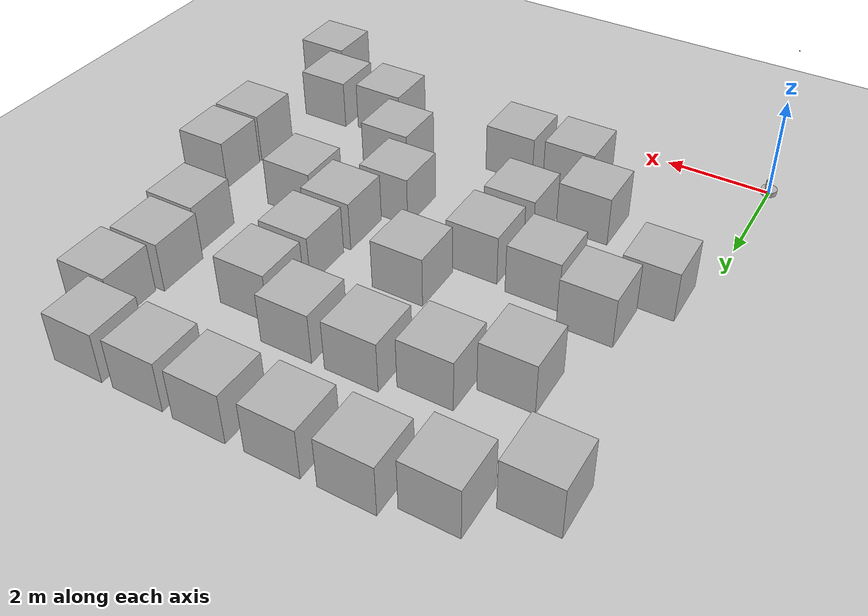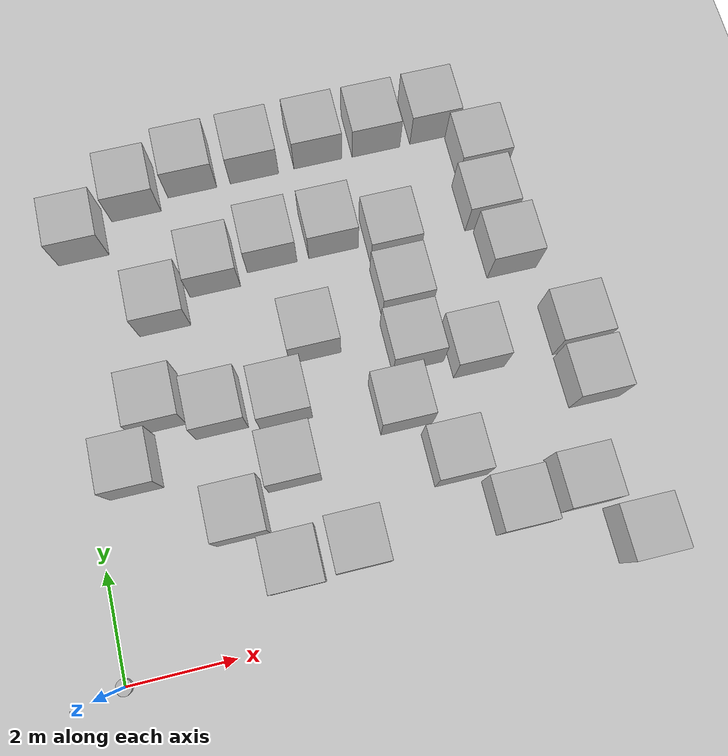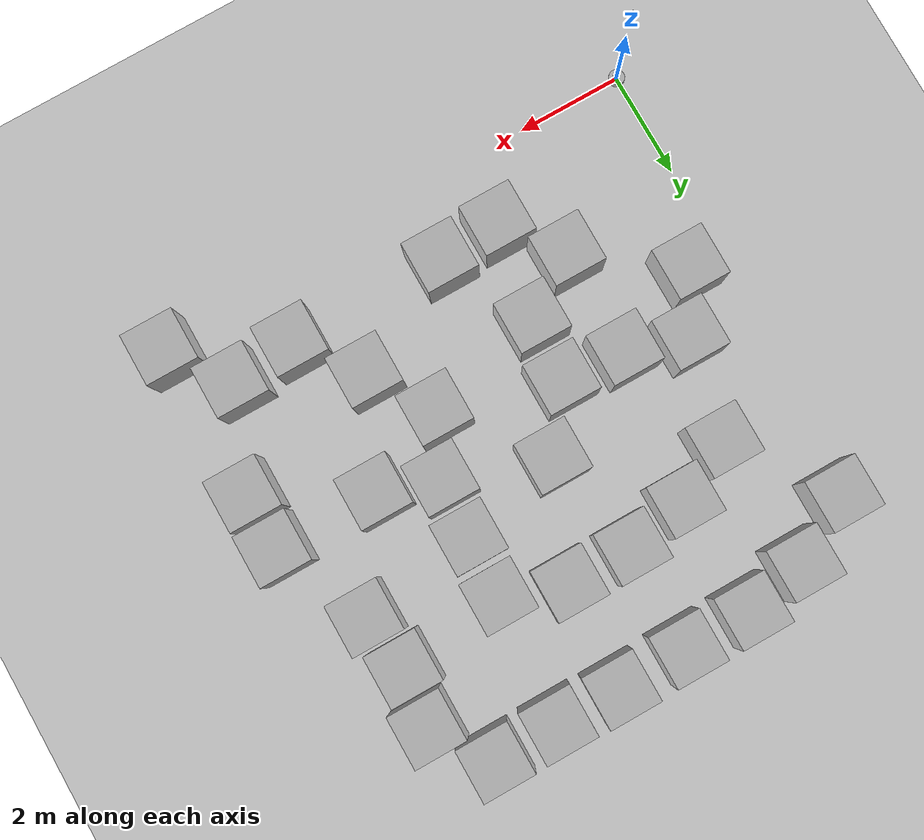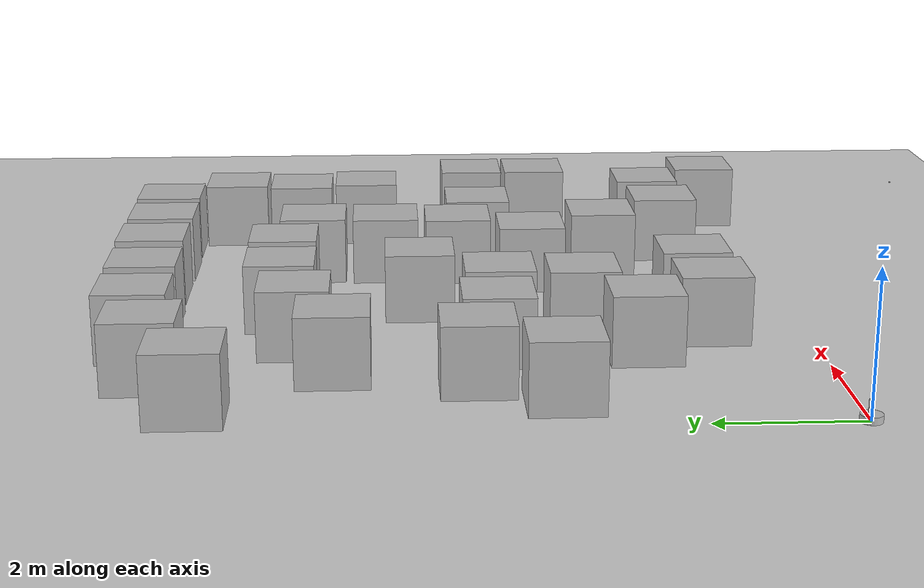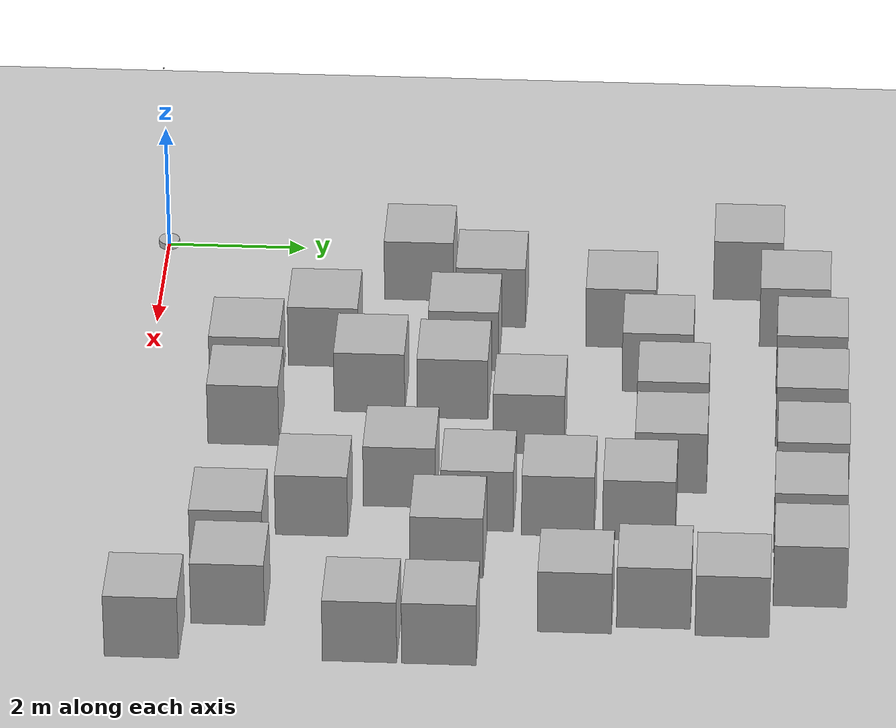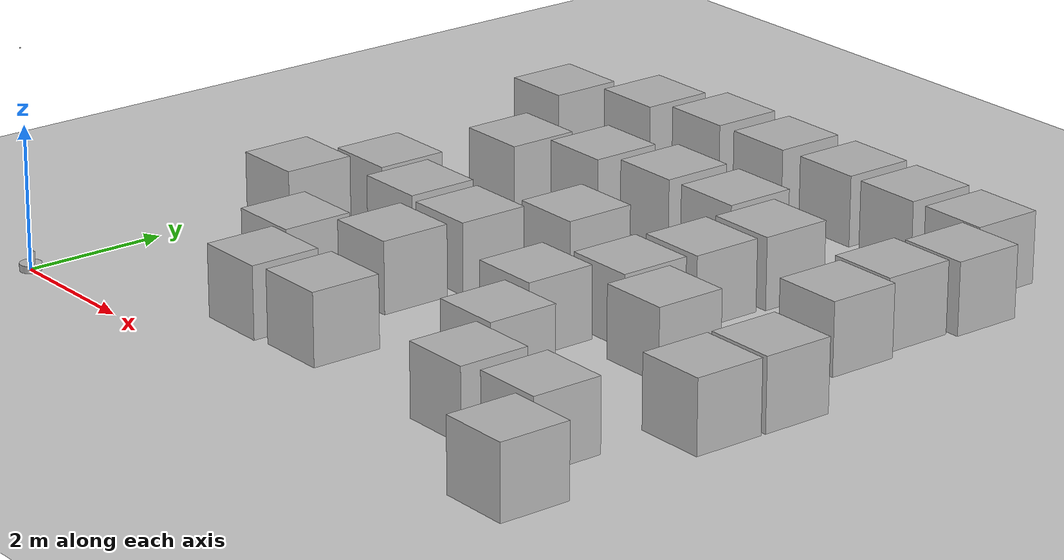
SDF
<sdf version="1.7">
 <world name="default">
  <light name="sun" type="directional">
   <pose>0 0 10 0 -0 0</pose>
   <diffuse>0.8 0.8 0.8 1</diffuse>
   <specular>0.2 0.2 0.2 1</specular>
   <attenuation>
    <range>1000</range>
    <constant>0.9</constant>
    <linear>0.01</linear>
    <quadratic>0.001</quadratic>
   </attenuation>
   <direction>-0.5 0.1 -0.9</direction>
   <spot><inner_angle>0</inner_angle><outer_angle>0</outer_angle><falloff>0</falloff></spot>
  </light>
  <model name="ground_plane">
   <static>1</static>
   <link name="link">
    <collision name="collision">
     <geometry><plane><normal>0 0 1</normal><size>100 100</size></plane></geometry>
     <surface><friction><ode><mu>100</mu><mu2>50</mu2></ode></friction></surface>
    </collision>
    <visual name="visual">
     <cast_shadows>0</cast_shadows>
     <geometry><plane><normal>0 0 1</normal><size>100 100</size></plane></geometry>
     <material>
      <script><uri>file://media/materials/scripts/gazebo.material</uri><name>Gazebo/Grey</name></script>
     </material>
    </visual>
   </link>
  </model>
  <gravity>0 0 -9.8</gravity>
  <magnetic_field>6e-06 2.3e-05 -4.2e-05</magnetic_field>
  <atmosphere type="adiabatic"/>
  <physics type="ode">
   <max_step_size>0.001</max_step_size>
   <real_time_factor>1</real_time_factor>
   <real_time_update_rate>1000</real_time_update_rate>
  </physics>
  <scene><ambient>0.4 0.4 0.4 1</ambient><background>0.7 0.7 0.7 1</background><shadows>1</shadows></scene>
  <audio><device>default</device></audio>
  <spherical_coordinates>
   <surface_model>EARTH_WGS84</surface_model>
   <latitude_deg>0</latitude_deg>
   <longitude_deg>0</longitude_deg>
   <elevation>0</elevation>
   <heading_deg>0</heading_deg>
  </spherical_coordinates>
  <model name="cube_obstacle_0">
   <link name="link">
    <pose>0 0 0.5 0 -0 0</pose>
    <collision name="collision">
     <geometry><mesh><uri>model://cube_obstacle/meshes/cube.stl</uri></mesh></geometry>
    </collision>
    <visual name="visual">
     <geometry><mesh><uri>model://cube_obstacle/meshes/cube.stl</uri></mesh></geometry>
    </visual>
    <inertial>
     <inertia><ixx>1</ixx><ixy>0</ixy><ixz>0</ixz><iyy>1</iyy><iyz>0</iyz><izz>1</izz></inertia>
     <mass>1</mass>
    </inertial>
   </link>
   <pose>2.51679 4.47749 -0.5 -0 -0 -0</pose>
  </model>
  <model name="my_bot">
   <joint name="x_joint" type="prismatic">
    <pose relative_to="__model__">0 0 0.05 0 -0 0</pose>
    <parent>world</parent>
    <child>x_link</child>
    <axis>
     <xyz>1 0 0</xyz>
     <limit><lower>-100</lower><upper>100</upper><effort>1</effort><velocity>0.5</velocity></limit>
     <dynamics><spring_reference>0</spring_reference><spring_stiffness>0</spring_stiffness></dynamics>
    </axis>
   </joint>
   <link name="x_link">
    <pose relative_to="x_joint">0 0 0 0 -0 0</pose>
    <inertial>
     <mass>0.001</mass>
     <inertia><ixx>0.0001</ixx><ixy>0</ixy><ixz>0</ixz><iyy>0.0001</iyy><iyz>0</iyz><izz>0.0001</izz></inertia>
    </inertial>
    <collision name="x_link_collision">
     <pose>0 0 3 0 -0 0</pose>
     <geometry><cylinder><length>0.01</length><radius>0.01</radius></cylinder></geometry>
    </collision>
    <visual name="x_link_visual">
     <pose>0 0 3 0 -0 0</pose>
     <geometry><cylinder><length>0.01</length><radius>0.01</radius></cylinder></geometry>
    </visual>
   </link>
   <joint name="y_joint" type="prismatic">
    <pose relative_to="x_link">0 0 0 0 -0 0</pose>
    <parent>x_link</parent>
    <child>y_link</child>
    <axis>
     <xyz>0 1 0</xyz>
     <limit><lower>-100</lower><upper>100</upper><effort>1</effort><velocity>0.5</velocity></limit>
     <dynamics><spring_reference>0</spring_reference><spring_stiffness>0</spring_stiffness></dynamics>
    </axis>
   </joint>
   <link name="y_link">
    <pose relative_to="y_joint">0 0 0 0 -0 0</pose>
    <inertial>
     <mass>0.001</mass>
     <inertia><ixx>0.0001</ixx><ixy>0</ixy><ixz>0</ixz><iyy>0.0001</iyy><iyz>0</iyz><izz>0.0001</izz></inertia>
    </inertial>
    <collision name="y_link_collision">
     <pose>0 0 3 0 -0 0</pose>
     <geometry><cylinder><length>0.01</length><radius>0.01</radius></cylinder></geometry>
    </collision>
    <visual name="y_link_visual">
     <pose>0 0 3 0 -0 0</pose>
     <geometry><cylinder><length>0.01</length><radius>0.01</radius></cylinder></geometry>
    </visual>
   </link>
   <joint name="theta_joint" type="revolute">
    <pose relative_to="y_link">0 0 0 0 -0 0</pose>
    <parent>y_link</parent>
    <child>base_link</child>
    <axis>
     <xyz>0 0 1</xyz>
     <limit><lower>-1e+16</lower><upper>1e+16</upper></limit>
     <dynamics><spring_reference>0</spring_reference><spring_stiffness>0</spring_stiffness></dynamics>
    </axis>
   </joint>
   <link name="base_link">
    <pose relative_to="theta_joint">0 0 0 0 -0 0</pose>
    <inertial>
     <mass>1</mass>
     <inertia>
      <ixx>0.00166667</ixx>
      <ixy>0</ixy>
      <ixz>0</ixz>
      <iyy>0.00166667</iyy>
      <iyz>0</iyz>
      <izz>0.00166667</izz>
     </inertia>
    </inertial>
    <collision name="base_link_collision">
     <geometry><cylinder><length>0.1</length><radius>0.15</radius></cylinder></geometry>
    </collision>
    <visual name="base_link_visual">
     <geometry><cylinder><length>0.1</length><radius>0.15</radius></cylinder></geometry>
    </visual>
   </link>
   <joint name="arm_joint" type="revolute">
    <pose relative_to="base_link">0.05 0 0.025 0 -0 0</pose>
    <parent>base_link</parent>
    <child>arm</child>
    <axis>
     <xyz>0 1 0</xyz>
     <limit><lower>-1.5708</lower><upper>1.5708</upper><effort>1</effort><velocity>1</velocity></limit>
     <dynamics><spring_reference>0</spring_reference><spring_stiffness>0</spring_stiffness></dynamics>
    </axis>
   </joint>
   <link name="arm">
    <pose relative_to="arm_joint">0 0 0 0 -0 0</pose>
    <inertial>
     <mass>0.2</mass>
     <inertia><ixx>0.0001</ixx><ixy>0</ixy><ixz>0</ixz><iyy>0.0001</iyy><iyz>0</iyz><izz>0.0002</izz></inertia>
    </inertial>
    <collision name="arm_collision">
     <geometry>
      <mesh><scale>1 1 1</scale><uri>model://vacumoon_simulation/description/arm.stl</uri></mesh>
     </geometry>
    </collision>
    <visual name="arm_visual">
     <geometry>
      <mesh><scale>1 1 1</scale><uri>model://vacumoon_simulation/description/arm.stl</uri></mesh>
     </geometry>
    </visual>
   </link>
   <static>0</static>
   <plugin name="gazebo_ros2_control" filename="libgazebo_ros2_control.so">
    <parameters>/home/max/vacumoon_ws/install/vacumoon_simulation/share/vacumoon_simulation/config/controllers.yaml</parameters>
   </plugin>
   <pose>-4e-06 0 1e-06 7e-06 7e-06 -0</pose>
  </model>
  <model name="cube_obstacle_0_clone">
   <link name="link">
    <pose>0 0 0.5 0 -0 0</pose>
    <collision name="collision">
     <geometry><mesh><uri>model://cube_obstacle/meshes/cube.stl</uri></mesh></geometry>
    </collision>
    <visual name="visual">
     <geometry><mesh><uri>model://cube_obstacle/meshes/cube.stl</uri></mesh></geometry>
    </visual>
    <inertial>
     <inertia><ixx>1</ixx><ixy>0</ixy><ixz>0</ixz><iyy>1</iyy><iyz>0</iyz><izz>1</izz></inertia>
     <mass>1</mass>
    </inertial>
   </link>
   <pose>4.52945 5.49802 -0.5 -0 -0 -0</pose>
  </model>
  <model name="cube_obstacle_0_clone_0">
   <link name="link">
    <pose>0 0 0.5 0 -0 0</pose>
    <collision name="collision">
     <geometry><mesh><uri>model://cube_obstacle/meshes/cube.stl</uri></mesh></geometry>
    </collision>
    <visual name="visual">
     <geometry><mesh><uri>model://cube_obstacle/meshes/cube.stl</uri></mesh></geometry>
    </visual>
    <inertial>
     <inertia><ixx>1</ixx><ixy>0</ixy><ixz>0</ixz><iyy>1</iyy><iyz>0</iyz><izz>1</izz></inertia>
     <mass>1</mass>
    </inertial>
   </link>
   <pose>6.51221 7.1048 -0.5 -0 -0 -0</pose>
  </model>
  <model name="cube_obstacle_0_clone_1">
   <link name="link">
    <pose>0 0 0.5 0 -0 0</pose>
    <collision name="collision">
     <geometry><mesh><uri>model://cube_obstacle/meshes/cube.stl</uri></mesh></geometry>
    </collision>
    <visual name="visual">
     <geometry><mesh><uri>model://cube_obstacle/meshes/cube.stl</uri></mesh></geometry>
    </visual>
    <inertial>
     <inertia><ixx>1</ixx><ixy>0</ixy><ixz>0</ixz><iyy>1</iyy><iyz>0</iyz><izz>1</izz></inertia>
     <mass>1</mass>
    </inertial>
   </link>
   <pose>7.49526 4.50697 -0.5 -0 -0 -0</pose>
  </model>
  <model name="cube_obstacle_0_clone_2">
   <link name="link">
    <pose>0 0 0.5 0 -0 0</pose>
    <collision name="collision">
     <geometry><mesh><uri>model://cube_obstacle/meshes/cube.stl</uri></mesh></geometry>
    </collision>
    <visual name="visual">
     <geometry><mesh><uri>model://cube_obstacle/meshes/cube.stl</uri></mesh></geometry>
    </visual>
    <inertial>
     <inertia><ixx>1</ixx><ixy>0</ixy><ixz>0</ixz><iyy>1</iyy><iyz>0</iyz><izz>1</izz></inertia>
     <mass>1</mass>
    </inertial>
   </link>
   <pose>4.50356 1.48626 -0.5 -0 -0 -0</pose>
  </model>
  <model name="cube_obstacle_0_clone_3">
   <link name="link">
    <pose>0 0 0.5 0 -0 0</pose>
    <collision name="collision">
     <geometry><mesh><uri>model://cube_obstacle/meshes/cube.stl</uri></mesh></geometry>
    </collision>
    <visual name="visual">
     <geometry><mesh><uri>model://cube_obstacle/meshes/cube.stl</uri></mesh></geometry>
    </visual>
    <inertial>
     <inertia><ixx>1</ixx><ixy>0</ixy><ixz>0</ixz><iyy>1</iyy><iyz>0</iyz><izz>1</izz></inertia>
     <mass>1</mass>
    </inertial>
   </link>
   <pose>2.52027 2.47172 -0.5 -0 -0 -0</pose>
  </model>
  <model name="cube_obstacle_0_clone_4">
   <link name="link">
    <pose>0 0 0.5 0 -0 0</pose>
    <collision name="collision">
     <geometry><mesh><uri>model://cube_obstacle/meshes/cube.stl</uri></mesh></geometry>
    </collision>
    <visual name="visual">
     <geometry><mesh><uri>model://cube_obstacle/meshes/cube.stl</uri></mesh></geometry>
    </visual>
    <inertial>
     <inertia><ixx>1</ixx><ixy>0</ixy><ixz>0</ixz><iyy>1</iyy><iyz>0</iyz><izz>1</izz></inertia>
     <mass>1</mass>
    </inertial>
   </link>
   <pose>7.47965 1.49169 -0.5 -0 -0 -0</pose>
  </model>
  <model name="cube_obstacle_0_clone_5">
   <link name="link">
    <pose>0 0 0.5 0 -0 0</pose>
    <collision name="collision">
     <geometry><mesh><uri>model://cube_obstacle/meshes/cube.stl</uri></mesh></geometry>
    </collision>
    <visual name="visual">
     <geometry><mesh><uri>model://cube_obstacle/meshes/cube.stl</uri></mesh></geometry>
    </visual>
    <inertial>
     <inertia><ixx>1</ixx><ixy>0</ixy><ixz>0</ixz><iyy>1</iyy><iyz>0</iyz><izz>1</izz></inertia>
     <mass>1</mass>
    </inertial>
   </link>
   <pose>9.5001 0.50975 -0.5 -0 -0 -0</pose>
  </model>
  <model name="cube_obstacle_0_clone_6">
   <link name="link">
    <pose>0 0 0.5 0 -0 0</pose>
    <collision name="collision">
     <geometry><mesh><uri>model://cube_obstacle/meshes/cube.stl</uri></mesh></geometry>
    </collision>
    <visual name="visual">
     <geometry><mesh><uri>model://cube_obstacle/meshes/cube.stl</uri></mesh></geometry>
    </visual>
    <inertial>
     <inertia><ixx>1</ixx><ixy>0</ixy><ixz>0</ixz><iyy>1</iyy><iyz>0</iyz><izz>1</izz></inertia>
     <mass>1</mass>
    </inertial>
   </link>
   <pose>0.534818 8.49904 -0.5 -0 -0 -0</pose>
  </model>
  <model name="cube_obstacle_0_clone_7">
   <link name="link">
    <pose>0 0 0.5 0 -0 0</pose>
    <collision name="collision">
     <geometry><mesh><uri>model://cube_obstacle/meshes/cube.stl</uri></mesh></geometry>
    </collision>
    <visual name="visual">
     <geometry><mesh><uri>model://cube_obstacle/meshes/cube.stl</uri></mesh></geometry>
    </visual>
    <inertial>
     <inertia><ixx>1</ixx><ixy>0</ixy><ixz>0</ixz><iyy>1</iyy><iyz>0</iyz><izz>1</izz></inertia>
     <mass>1</mass>
    </inertial>
   </link>
   <pose>4.11672 7.49863 -0.5 -0 -0 -0</pose>
  </model>
  <model name="cube_obstacle_0_clone_8">
   <link name="link">
    <pose>0 0 0.5 0 -0 0</pose>
    <collision name="collision">
     <geometry><mesh><uri>model://cube_obstacle/meshes/cube.stl</uri></mesh></geometry>
    </collision>
    <visual name="visual">
     <geometry><mesh><uri>model://cube_obstacle/meshes/cube.stl</uri></mesh></geometry>
    </visual>
    <inertial>
     <inertia><ixx>1</ixx><ixy>0</ixy><ixz>0</ixz><iyy>1</iyy><iyz>0</iyz><izz>1</izz></inertia>
     <mass>1</mass>
    </inertial>
   </link>
   <pose>5.48954 9.47593 -0.5 -0 -0 -0</pose>
  </model>
  <model name="cube_obstacle_0_clone_8_clone">
   <link name="link">
    <pose>0 0 0.5 0 -0 0</pose>
    <collision name="collision">
     <geometry><mesh><uri>model://cube_obstacle/meshes/cube.stl</uri></mesh></geometry>
    </collision>
    <visual name="visual">
     <geometry><mesh><uri>model://cube_obstacle/meshes/cube.stl</uri></mesh></geometry>
    </visual>
    <inertial>
     <inertia><ixx>1</ixx><ixy>0</ixy><ixz>0</ixz><iyy>1</iyy><iyz>0</iyz><izz>1</izz></inertia>
     <mass>1</mass>
    </inertial>
   </link>
   <pose>3.72245 4.38563 -0.5 -0 -0 -0</pose>
  </model>
  <model name="cube_obstacle_0_clone_8_clone_0">
   <link name="link">
    <pose>0 0 0.5 0 -0 0</pose>
    <collision name="collision">
     <geometry><mesh><uri>model://cube_obstacle/meshes/cube.stl</uri></mesh></geometry>
    </collision>
    <visual name="visual">
     <geometry><mesh><uri>model://cube_obstacle/meshes/cube.stl</uri></mesh></geometry>
    </visual>
    <inertial>
     <inertia><ixx>1</ixx><ixy>0</ixy><ixz>0</ixz><iyy>1</iyy><iyz>0</iyz><izz>1</izz></inertia>
     <mass>1</mass>
    </inertial>
   </link>
   <pose>3.63078 3.20389 -0.5 -0 -0 -0</pose>
  </model>
  <model name="cube_obstacle_0_clone_8_clone_1">
   <link name="link">
    <pose>0 0 0.5 0 -0 0</pose>
    <collision name="collision">
     <geometry><mesh><uri>model://cube_obstacle/meshes/cube.stl</uri></mesh></geometry>
    </collision>
    <visual name="visual">
     <geometry><mesh><uri>model://cube_obstacle/meshes/cube.stl</uri></mesh></geometry>
    </visual>
    <inertial>
     <inertia><ixx>1</ixx><ixy>0</ixy><ixz>0</ixz><iyy>1</iyy><iyz>0</iyz><izz>1</izz></inertia>
     <mass>1</mass>
    </inertial>
   </link>
   <pose>3.3111 1.41317 -0.5 -0 -0 -0</pose>
  </model>
  <model name="cube_obstacle_0_clone_8_clone_2">
   <link name="link">
    <pose>0 0 0.5 0 -0 0</pose>
    <collision name="collision">
     <geometry><mesh><uri>model://cube_obstacle/meshes/cube.stl</uri></mesh></geometry>
    </collision>
    <visual name="visual">
     <geometry><mesh><uri>model://cube_obstacle/meshes/cube.stl</uri></mesh></geometry>
    </visual>
    <inertial>
     <inertia><ixx>1</ixx><ixy>0</ixy><ixz>0</ixz><iyy>1</iyy><iyz>0</iyz><izz>1</izz></inertia>
     <mass>1</mass>
    </inertial>
   </link>
   <pose>6.62128 2.59672 -0.5 -0 -0 -0</pose>
  </model>
  <model name="cube_obstacle_0_clone_8_clone_3">
   <link name="link">
    <pose>0 0 0.5 0 -0 0</pose>
    <collision name="collision">
     <geometry><mesh><uri>model://cube_obstacle/meshes/cube.stl</uri></mesh></geometry>
    </collision>
    <visual name="visual">
     <geometry><mesh><uri>model://cube_obstacle/meshes/cube.stl</uri></mesh></geometry>
    </visual>
    <inertial>
     <inertia><ixx>1</ixx><ixy>0</ixy><ixz>0</ixz><iyy>1</iyy><iyz>0</iyz><izz>1</izz></inertia>
     <mass>1</mass>
    </inertial>
   </link>
   <pose>5.88752 3.76411 -0.5 -0 -0 -0</pose>
  </model>
  <model name="cube_obstacle_0_clone_8_clone_4">
   <link name="link">
    <pose>0 0 0.5 0 -0 0</pose>
    <collision name="collision">
     <geometry><mesh><uri>model://cube_obstacle/meshes/cube.stl</uri></mesh></geometry>
    </collision>
    <visual name="visual">
     <geometry><mesh><uri>model://cube_obstacle/meshes/cube.stl</uri></mesh></geometry>
    </visual>
    <inertial>
     <inertia><ixx>1</ixx><ixy>0</ixy><ixz>0</ixz><iyy>1</iyy><iyz>0</iyz><izz>1</izz></inertia>
     <mass>1</mass>
    </inertial>
   </link>
   <pose>6.39137 4.86847 -0.5 -0 -0 -0</pose>
  </model>
  <model name="cube_obstacle_0_clone_8_clone_5">
   <link name="link">
    <pose>0 0 0.5 0 -0 0</pose>
    <collision name="collision">
     <geometry><mesh><uri>model://cube_obstacle/meshes/cube.stl</uri></mesh></geometry>
    </collision>
    <visual name="visual">
     <geometry><mesh><uri>model://cube_obstacle/meshes/cube.stl</uri></mesh></geometry>
    </visual>
    <inertial>
     <inertia><ixx>1</ixx><ixy>0</ixy><ixz>0</ixz><iyy>1</iyy><iyz>0</iyz><izz>1</izz></inertia>
     <mass>1</mass>
    </inertial>
   </link>
   <pose>6.46282 5.98604 -0.5 -0 -0 -0</pose>
  </model>
  <model name="cube_obstacle_0_clone_8_clone_7">
   <link name="link">
    <pose>0 0 0.5 0 -0 0</pose>
    <collision name="collision">
     <geometry><mesh><uri>model://cube_obstacle/meshes/cube.stl</uri></mesh></geometry>
    </collision>
    <visual name="visual">
     <geometry><mesh><uri>model://cube_obstacle/meshes/cube.stl</uri></mesh></geometry>
    </visual>
    <inertial>
     <inertia><ixx>1</ixx><ixy>0</ixy><ixz>0</ixz><iyy>1</iyy><iyz>0</iyz><izz>1</izz></inertia>
     <mass>1</mass>
    </inertial>
   </link>
   <pose>5.35533 7.50804 -0.5 -0 -0 -0</pose>
  </model>
  <model name="cube_obstacle_0_clone_8_clone_8">
   <link name="link">
    <pose>0 0 0.5 0 -0 0</pose>
    <collision name="collision">
     <geometry><mesh><uri>model://cube_obstacle/meshes/cube.stl</uri></mesh></geometry>
    </collision>
    <visual name="visual">
     <geometry><mesh><uri>model://cube_obstacle/meshes/cube.stl</uri></mesh></geometry>
    </visual>
    <inertial>
     <inertia><ixx>1</ixx><ixy>0</ixy><ixz>0</ixz><iyy>1</iyy><iyz>0</iyz><izz>1</izz></inertia>
     <mass>1</mass>
    </inertial>
   </link>
   <pose>2.93206 7.25383 -0.5 -0 -0 -0</pose>
  </model>
  <model name="cube_obstacle_0_clone_8_clone_9">
   <link name="link">
    <pose>0 0 0.5 0 -0 0</pose>
    <collision name="collision">
     <geometry><mesh><uri>model://cube_obstacle/meshes/cube.stl</uri></mesh></geometry>
    </collision>
    <visual name="visual">
     <geometry><mesh><uri>model://cube_obstacle/meshes/cube.stl</uri></mesh></geometry>
    </visual>
    <inertial>
     <inertia><ixx>1</ixx><ixy>0</ixy><ixz>0</ixz><iyy>1</iyy><iyz>0</iyz><izz>1</izz></inertia>
     <mass>1</mass>
    </inertial>
   </link>
   <pose>1.8373 6.69568 -0.5 -0 -0 -0</pose>
  </model>
  <model name="cube_obstacle_0_clone_8_clone_10">
   <link name="link">
    <pose>0 0 0.5 0 -0 0</pose>
    <collision name="collision">
     <geometry><mesh><uri>model://cube_obstacle/meshes/cube.stl</uri></mesh></geometry>
    </collision>
    <visual name="visual">
     <geometry><mesh><uri>model://cube_obstacle/meshes/cube.stl</uri></mesh></geometry>
    </visual>
    <inertial>
     <inertia><ixx>1</ixx><ixy>0</ixy><ixz>0</ixz><iyy>1</iyy><iyz>0</iyz><izz>1</izz></inertia>
     <mass>1</mass>
    </inertial>
   </link>
   <pose>1.4003 4.80947 -0.5 -0 -0 -0</pose>
  </model>
  <model name="cube_obstacle_0_clone_8_clone_11">
   <link name="link">
    <pose>0 0 0.5 0 -0 0</pose>
    <collision name="collision">
     <geometry><mesh><uri>model://cube_obstacle/meshes/cube.stl</uri></mesh></geometry>
    </collision>
    <visual name="visual">
     <geometry><mesh><uri>model://cube_obstacle/meshes/cube.stl</uri></mesh></geometry>
    </visual>
    <inertial>
     <inertia><ixx>1</ixx><ixy>0</ixy><ixz>0</ixz><iyy>1</iyy><iyz>0</iyz><izz>1</izz></inertia>
     <mass>1</mass>
    </inertial>
   </link>
   <pose>0.773039 3.73963 -0.5 -0 -0 -0</pose>
  </model>
  <model name="cube_obstacle_0_clone_8_clone_12">
   <link name="link">
    <pose>0 0 0.5 0 -0 0</pose>
    <collision name="collision">
     <geometry><mesh><uri>model://cube_obstacle/meshes/cube.stl</uri></mesh></geometry>
    </collision>
    <visual name="visual">
     <geometry><mesh><uri>model://cube_obstacle/meshes/cube.stl</uri></mesh></geometry>
    </visual>
    <inertial>
     <inertia><ixx>1</ixx><ixy>0</ixy><ixz>0</ixz><iyy>1</iyy><iyz>0</iyz><izz>1</izz></inertia>
     <mass>1</mass>
    </inertial>
   </link>
   <pose>1.7052 9.18325 -0.5 -0 -0 -0</pose>
  </model>
  <model name="cube_obstacle_0_clone_8_clone_13">
   <link name="link">
    <pose>0 0 0.5 0 -0 0</pose>
    <collision name="collision">
     <geometry><mesh><uri>model://cube_obstacle/meshes/cube.stl</uri></mesh></geometry>
    </collision>
    <visual name="visual">
     <geometry><mesh><uri>model://cube_obstacle/meshes/cube.stl</uri></mesh></geometry>
    </visual>
    <inertial>
     <inertia><ixx>1</ixx><ixy>0</ixy><ixz>0</ixz><iyy>1</iyy><iyz>0</iyz><izz>1</izz></inertia>
     <mass>1</mass>
    </inertial>
   </link>
   <pose>2.88843 9.43646 -0.5 -0 -0 -0</pose>
  </model>
  <model name="cube_obstacle_0_clone_8_clone_14">
   <link name="link">
    <pose>0 0 0.5 0 -0 0</pose>
    <collision name="collision">
     <geometry><mesh><uri>model://cube_obstacle/meshes/cube.stl</uri></mesh></geometry>
    </collision>
    <visual name="visual">
     <geometry><mesh><uri>model://cube_obstacle/meshes/cube.stl</uri></mesh></geometry>
    </visual>
    <inertial>
     <inertia><ixx>1</ixx><ixy>0</ixy><ixz>0</ixz><iyy>1</iyy><iyz>0</iyz><izz>1</izz></inertia>
     <mass>1</mass>
    </inertial>
   </link>
   <pose>4.16754 9.44849 -0.5 -0 -0 -0</pose>
  </model>
  <model name="cube_obstacle_0_clone_8_clone_15">
   <link name="link">
    <pose>0 0 0.5 0 -0 0</pose>
    <collision name="collision">
     <geometry><mesh><uri>model://cube_obstacle/meshes/cube.stl</uri></mesh></geometry>
    </collision>
    <visual name="visual">
     <geometry><mesh><uri>model://cube_obstacle/meshes/cube.stl</uri></mesh></geometry>
    </visual>
    <inertial>
     <inertia><ixx>1</ixx><ixy>0</ixy><ixz>0</ixz><iyy>1</iyy><iyz>0</iyz><izz>1</izz></inertia>
     <mass>1</mass>
    </inertial>
   </link>
   <pose>8.709 1.60899 -0.5 -0 -0 -0</pose>
  </model>
  <model name="cube_obstacle_0_clone_8_clone_16">
   <link name="link">
    <pose>0 0 0.5 0 -0 0</pose>
    <collision name="collision">
     <geometry><mesh><uri>model://cube_obstacle/meshes/cube.stl</uri></mesh></geometry>
    </collision>
    <visual name="visual">
     <geometry><mesh><uri>model://cube_obstacle/meshes/cube.stl</uri></mesh></geometry>
    </visual>
    <inertial>
     <inertia><ixx>1</ixx><ixy>0</ixy><ixz>0</ixz><iyy>1</iyy><iyz>0</iyz><izz>1</izz></inertia>
     <mass>1</mass>
    </inertial>
   </link>
   <pose>6.70025 9.45877 -0.5 -0 -0 -0</pose>
  </model>
  <model name="cube_obstacle_0_clone_8_clone_17">
   <link name="link">
    <pose>0 0 0.5 0 -0 0</pose>
    <collision name="collision">
     <geometry><mesh><uri>model://cube_obstacle/meshes/cube.stl</uri></mesh></geometry>
    </collision>
    <visual name="visual">
     <geometry><mesh><uri>model://cube_obstacle/meshes/cube.stl</uri></mesh></geometry>
    </visual>
    <inertial>
     <inertia><ixx>1</ixx><ixy>0</ixy><ixz>0</ixz><iyy>1</iyy><iyz>0</iyz><izz>1</izz></inertia>
     <mass>1</mass>
    </inertial>
   </link>
   <pose>7.91641 9.47019 -0.5 -0 -0 -0</pose>
  </model>
  <model name="cube_obstacle_0_clone_8_clone_18">
   <link name="link">
    <pose>0 0 0.5 0 -0 0</pose>
    <collision name="collision">
     <geometry><mesh><uri>model://cube_obstacle/meshes/cube.stl</uri></mesh></geometry>
    </collision>
    <visual name="visual">
     <geometry><mesh><uri>model://cube_obstacle/meshes/cube.stl</uri></mesh></geometry>
    </visual>
    <inertial>
     <inertia><ixx>1</ixx><ixy>0</ixy><ixz>0</ixz><iyy>1</iyy><iyz>0</iyz><izz>1</izz></inertia>
     <mass>1</mass>
    </inertial>
   </link>
   <pose>8.64559 8.42839 -0.5 -0 -0 -0</pose>
  </model>
  <model name="cube_obstacle_0_clone_8_clone_6">
   <link name="link">
    <pose>0 0 0.5 0 -0 0</pose>
    <collision name="collision">
     <geometry><mesh><uri>model://cube_obstacle/meshes/cube.stl</uri></mesh></geometry>
    </collision>
    <visual name="visual">
     <geometry><mesh><uri>model://cube_obstacle/meshes/cube.stl</uri></mesh></geometry>
    </visual>
    <inertial>
     <inertia><ixx>1</ixx><ixy>0</ixy><ixz>0</ixz><iyy>1</iyy><iyz>0</iyz><izz>1</izz></inertia>
     <mass>1</mass>
    </inertial>
   </link>
   <pose>8.50649 7.36391 -0.5 -0 -0 -0</pose>
  </model>
  <model name="cube_obstacle_0_clone_8_clone_19">
   <link name="link">
    <pose>0 0 0.5 0 -0 0</pose>
    <collision name="collision">
     <geometry><mesh><uri>model://cube_obstacle/meshes/cube.stl</uri></mesh></geometry>
    </collision>
    <visual name="visual">
     <geometry><mesh><uri>model://cube_obstacle/meshes/cube.stl</uri></mesh></geometry>
    </visual>
    <inertial>
     <inertia><ixx>1</ixx><ixy>0</ixy><ixz>0</ixz><iyy>1</iyy><iyz>0</iyz><izz>1</izz></inertia>
     <mass>1</mass>
    </inertial>
   </link>
   <pose>8.66351 6.3007 -0.5 -0 -0 -0</pose>
  </model>
  <model name="cube_obstacle_0_clone_8_clone_20">
   <link name="link">
    <pose>0 0 0.5 0 -0 0</pose>
    <collision name="collision">
     <geometry><mesh><uri>model://cube_obstacle/meshes/cube.stl</uri></mesh></geometry>
    </collision>
    <visual name="visual">
     <geometry><mesh><uri>model://cube_obstacle/meshes/cube.stl</uri></mesh></geometry>
    </visual>
    <inertial>
     <inertia><ixx>1</ixx><ixy>0</ixy><ixz>0</ixz><iyy>1</iyy><iyz>0</iyz><izz>1</izz></inertia>
     <mass>1</mass>
    </inertial>
   </link>
   <pose>9.45962 4.51084 -0.5 -0 -0 -0</pose>
  </model>
  <model name="cube_obstacle_0_clone_8_clone_21">
   <link name="link">
    <pose>0 0 0.5 0 -0 0</pose>
    <collision name="collision">
     <geometry><mesh><uri>model://cube_obstacle/meshes/cube.stl</uri></mesh></geometry>
    </collision>
    <visual name="visual">
     <geometry><mesh><uri>model://cube_obstacle/meshes/cube.stl</uri></mesh></geometry>
    </visual>
    <inertial>
     <inertia><ixx>1</ixx><ixy>0</ixy><ixz>0</ixz><iyy>1</iyy><iyz>0</iyz><izz>1</izz></inertia>
     <mass>1</mass>
    </inertial>
   </link>
   <pose>9.45635 3.4445 -0.5 -0 -0 -0</pose>
  </model>
 </world>
</sdf>
